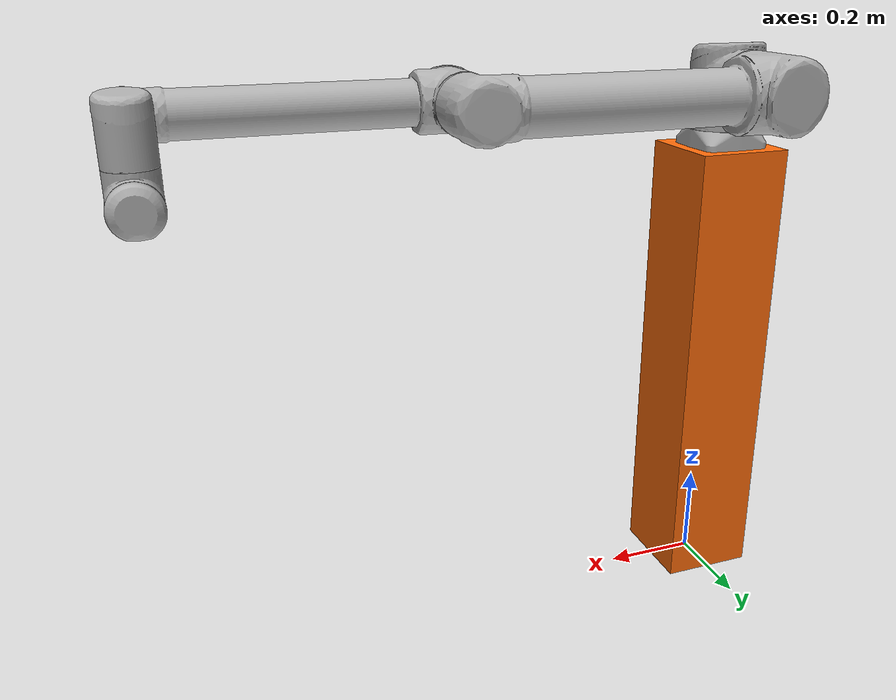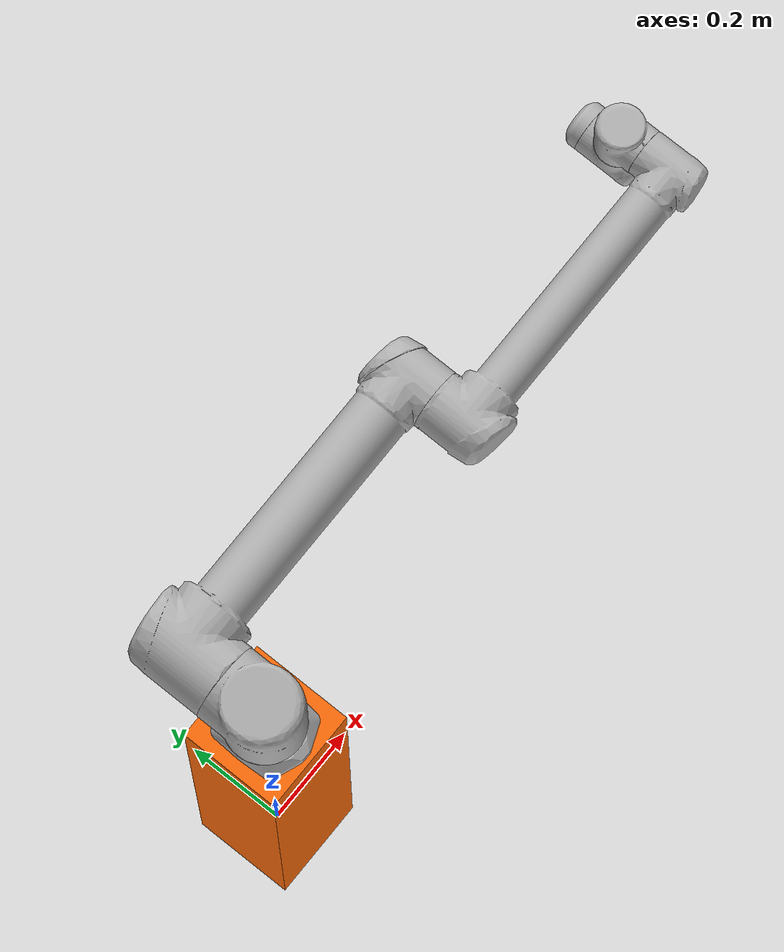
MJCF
<mujoco>
	<compiler angle="radian" meshdir="../../meshes/" />
	<include file="include/asset/ur10.xml" />
	<include file="include/default/ur10.xml" />
	<worldbody>
		<body name="ur10">
			<geom size="0.1 0.1 0.5" pos="0 0 0.5" type="box" contype="0" conaffinity="0" group="1" density="0" rgba="1 0.423529 0.0392157 1" />
			<geom size="0.1 0.1 0.5" pos="0 0 0.5" type="box" rgba="1 0.423529 0.0392157 1" />
			<geom pos="0 0 1" quat="-1 0 0 0" type="mesh" contype="0" conaffinity="0" group="1" density="0" rgba="0.7 0.7 0.7 1" mesh="base" />
			<geom pos="0 0 1" quat="-1 0 0 0" type="mesh" rgba="0.7 0.7 0.7 1" mesh="base" />
			<body gravcomp="1" name="ur10_shoulder_link" pos="0 0 1.1273" quat="0 0 0 1">
				<inertial pos="0 0 0" mass="7.778" diaginertia="0.0314743 0.0314743 0.0218756" />
				<joint name="ur10_shoulder_pan_joint" pos="0 0 0" axis="0 0 1" limited="true" range="-6.28319 6.28319" />
				<geom quat="0 0 0 1" type="mesh" contype="0" conaffinity="0" group="1" density="0" rgba="0.7 0.7 0.7 1" mesh="shoulder" />
				<geom quat="0 0 0 1" type="mesh" rgba="0.7 0.7 0.7 1" mesh="shoulder" />
				<body gravcomp="1" name="ur10_upper_arm_link" quat="0.707107 0.707107 0 0">
					<inertial pos="-0.306 0 0.175" mass="12.93" diaginertia="0.421754 0.421754 0.0363656" />
					<joint name="ur10_shoulder_lift_joint" pos="0 0 0" axis="0 0 1" limited="true" range="-6.28319 6.28319" />
					<geom pos="0 0 0.220941" quat="0.5 0.5 -0.5 -0.5" type="mesh" contype="0" conaffinity="0" group="1" density="0" rgba="0.7 0.7 0.7 1" mesh="upperarm" />
					<geom pos="0 0 0.220941" quat="0.5 0.5 -0.5 -0.5" type="mesh" rgba="0.7 0.7 0.7 1" mesh="upperarm" />
					<body gravcomp="1" name="ur10_forearm_link" pos="-0.612 0 0">
						<inertial pos="-0.28615 0 0.049042" mass="3.87" diaginertia="0.11107 0.11107 0.0108844" />
						<joint name="ur10_elbow_joint" pos="0 0 0" axis="0 0 1" limited="true" range="-3.14159 3.14159" />
						<geom pos="0 0 0.049042" quat="0.5 0.5 -0.5 -0.5" type="mesh" contype="0" conaffinity="0" group="1" density="0" rgba="0.7 0.7 0.7 1" mesh="forearm" />
						<geom pos="0 0 0.049042" quat="0.5 0.5 -0.5 -0.5" type="mesh" rgba="0.7 0.7 0.7 1" mesh="forearm" />
						<body gravcomp="1" name="ur10_wrist_1_link" pos="-0.5723 0 0.163941">
							<inertial pos="0 0 0" quat="0.5 0.5 -0.5 0.5" mass="1.96" diaginertia="0.0055125 0.00510825 0.00510825" />
							<joint name="ur10_wrist_1_joint" pos="0 0 0" axis="0 0 1" limited="true" range="-6.28319 6.28319" />
							<geom pos="0 0 -0.1149" quat="0.707107 0.707107 0 0" type="mesh" contype="0" conaffinity="0" group="1" density="0" rgba="0.7 0.7 0.7 1" mesh="wrist1" />
							<geom pos="0 0 -0.1149" quat="0.707107 0.707107 0 0" type="mesh" rgba="0.7 0.7 0.7 1" mesh="wrist1" />
							<body gravcomp="1" name="ur10_wrist_2_link" pos="0 -0.1157 -2.37305e-11" quat="0.707107 0.707107 0 0">
								<inertial pos="0 0 0" quat="0.5 0.5 -0.5 0.5" mass="1.96" diaginertia="0.0055125 0.00407925 0.00407925" />
								<joint name="ur10_wrist_2_joint" pos="0 0 0" axis="0 0 1" limited="true" range="-6.28319 6.28319" />
								<geom pos="0 0 -0.1158" type="mesh" contype="0" conaffinity="0" group="1" density="0" rgba="0.7 0.7 0.7 1" mesh="wrist2" />
								<geom pos="0 0 -0.1158" type="mesh" rgba="0.7 0.7 0.7 1" mesh="wrist2" />
								<body gravcomp="1" name="ur10_wrist_3_link" pos="0 0.0922 -1.89105e-11" quat="0.707107 -0.707107 0 0">
									<inertial pos="0.00921033 -0.00154269 0.044817" quat="0.997511 0.0122944 0.0692682 0.00473536" mass="0.476" diaginertia="0.00175501 0.0017156 0.000337225" />
									<joint name="ur10_wrist_3_joint" pos="0 0 0" axis="0 0 1" limited="true" range="-6.28319 6.28319" />
									<geom pos="0 0 -0.0922" quat="0.707107 0.707107 0 0" type="mesh" contype="0" conaffinity="0" group="1" density="0" rgba="0.7 0.7 0.7 1" mesh="wrist3" />
									<geom pos="0 0 -0.0922" quat="0.707107 0.707107 0 0" type="mesh" rgba="0.7 0.7 0.7 1" mesh="wrist3" />
								</body>
							</body>
						</body>
					</body>
				</body>
			</body>
		</body>
	</worldbody>
	<actuator>
		<position name="ur10_shoulder_pan_joint_A" joint="ur10_shoulder_pan_joint" class="ur10_shoulder_pan" />
		<position name="ur10_shoulder_lift_joint_A" joint="ur10_shoulder_lift_joint" class="ur10_shoulder_lift" />
		<position name="ur10_elbow_joint_A" joint="ur10_elbow_joint" class="ur10_elbow" />
		<position name="ur10_wrist_1_joint_A" joint="ur10_wrist_1_joint" class="ur10_wrist" />
		<position name="ur10_wrist_2_joint_A" joint="ur10_wrist_2_joint" class="ur10_wrist" />
		<position name="ur10_wrist_3_joint_A" joint="ur10_wrist_3_joint" class="ur10_wrist" />
	</actuator>
</mujoco>

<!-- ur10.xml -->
<mujoco>
	<asset>
		<mesh name="base" file="ur10/collision/base.stl" />
		<mesh name="shoulder" file="ur10/collision/shoulder.stl" />
		<mesh name="upperarm" file="ur10/collision/upperarm.stl" />
		<mesh name="forearm" file="ur10/collision/forearm.stl" />
		<mesh name="wrist1" file="ur10/collision/wrist1.stl" />
		<mesh name="wrist2" file="ur10/collision/wrist2.stl" />
		<mesh name="wrist3" file="ur10/collision/wrist3.stl" />
	</asset>
</mujoco>

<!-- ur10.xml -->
<mujoco>
	<default>
		<default class="ur10">
			<default class="ur10_shoulder">
				<position ctrlrange="-6.28319 6.28319" forcerange="-330 330" />
				<default class="ur10_shoulder_pan">
					<position kp="50" />
				</default>
				<default class="ur10_shoulder_lift">
					<position kp="50" />
				</default>
			</default>
			<default class="ur10_elbow">
				<position ctrlrange="-3.14159 3.14159" kp="10" forcerange="-150 150" />
			</default>
			<default class="ur10_wrist">
				<position ctrlrange="-6.28319 6.28319" kp="5" forcerange="-56 56" />
			</default>
		</default>
	</default>
</mujoco>
